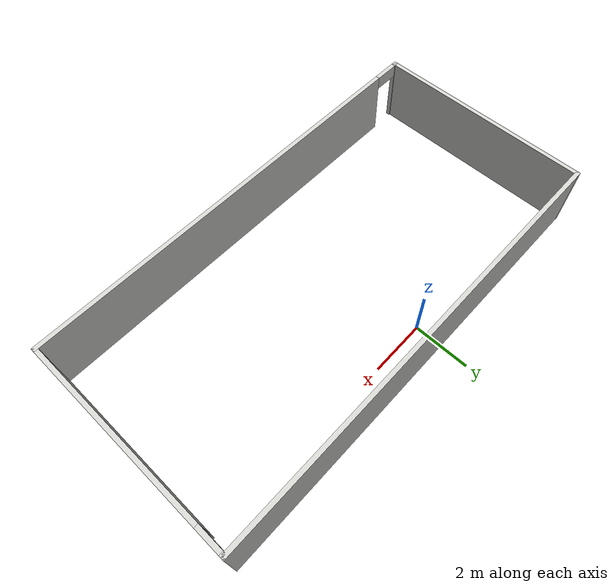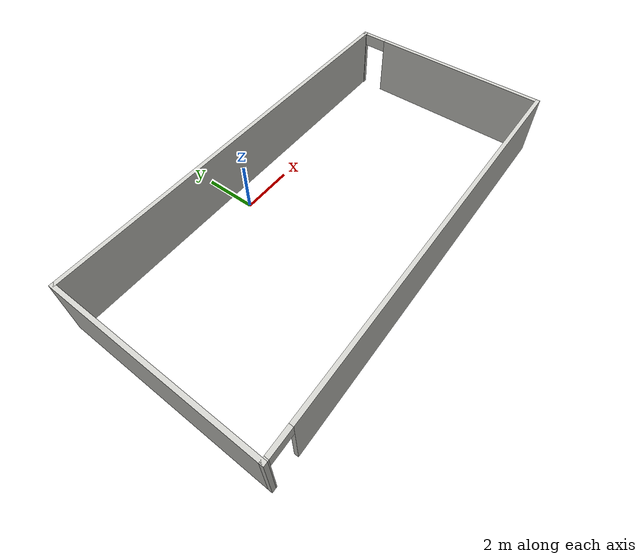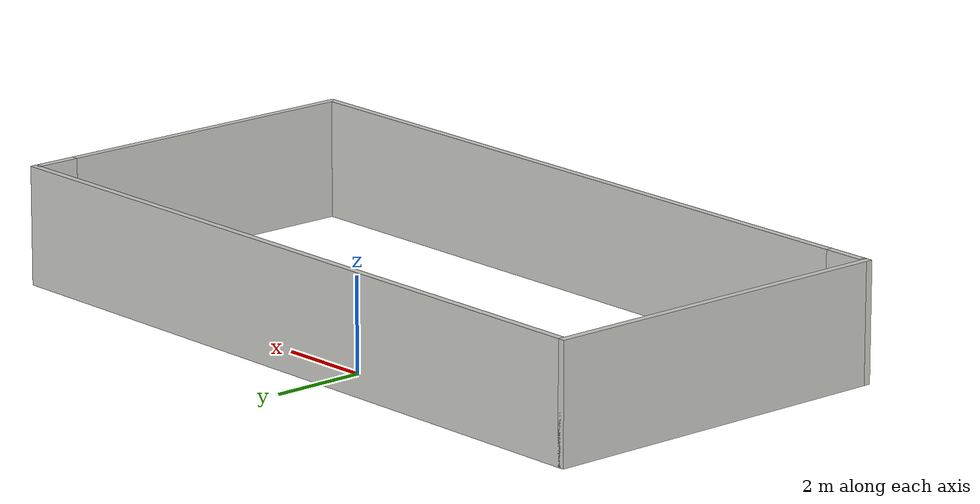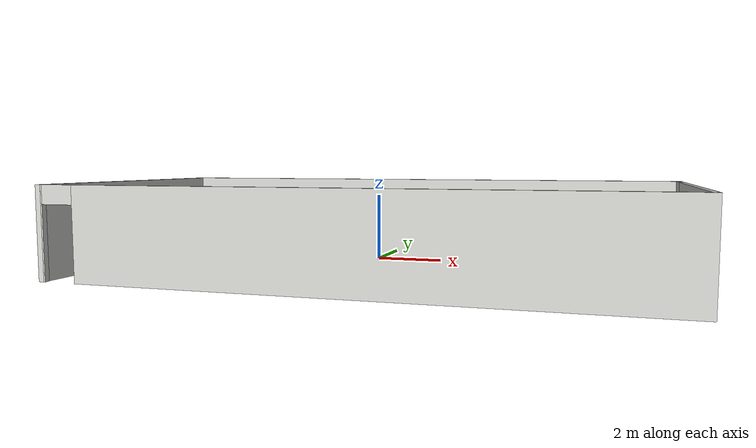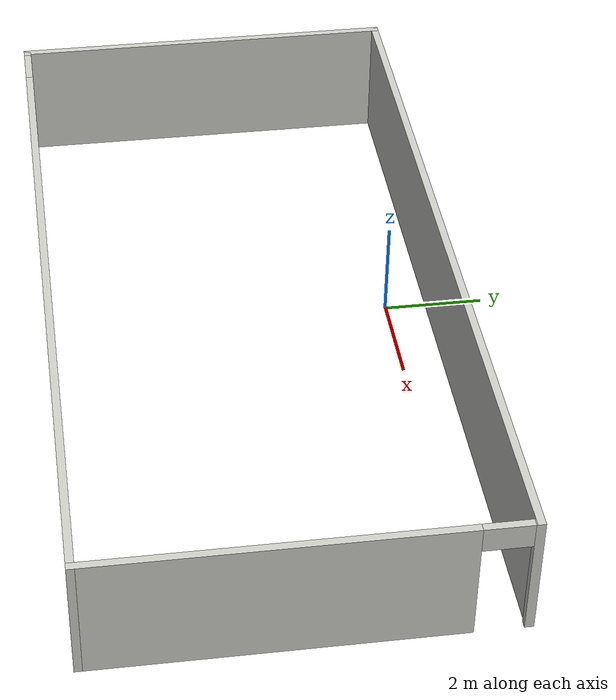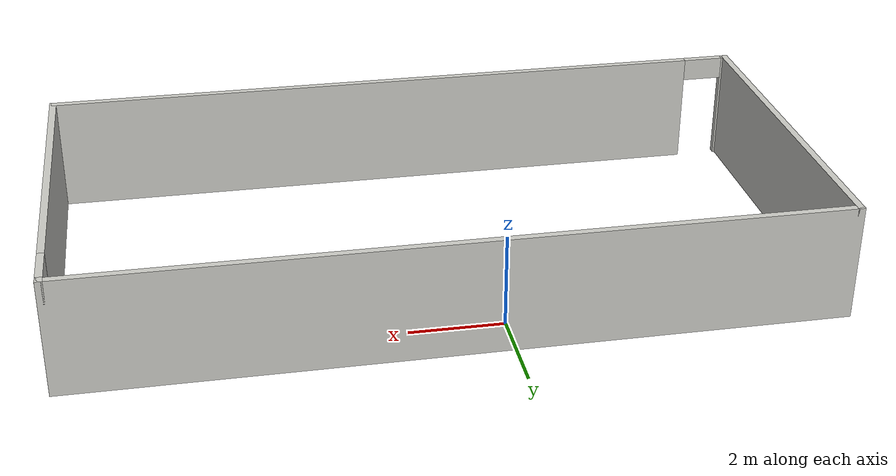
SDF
<?xml version='1.0'?>
<sdf version='1.7'>
  <model name='walls'>
    <pose>1.005 -3.025 0 0 -0 0</pose>
    <link name='Wall_0'>
      <collision name='Wall_0_Collision'>
        <geometry>
          <box>
            <size>8 0.15 2.5</size>
          </box>
        </geometry>
        <pose>0 0 1.25 0 -0 0</pose>
      </collision>
      <visual name='Wall_0_Visual'>
        <pose>0 0 1.25 0 -0 0</pose>
        <geometry>
          <box>
            <size>8 0.15 2.5</size>
          </box>
        </geometry>
        <material>
          <script>
            <uri>file://media/materials/scripts/gazebo.material</uri>
            <name>Gazebo/CeilingTiled</name>
          </script>
          <ambient>1 1 1 1</ambient>
        </material>
        <meta>
          <layer>0</layer>
        </meta>
      </visual>
      <pose>-7.925 0 0 0 -0 1.5708</pose>
    </link>
    <link name='Wall_1'>
      <collision name='Wall_1_Collision'>
        <geometry>
          <box>
            <size>16 0.15 2.5</size>
          </box>
        </geometry>
        <pose>0 0 1.25 0 -0 0</pose>
      </collision>
      <visual name='Wall_1_Visual'>
        <pose>0 0 1.25 0 -0 0</pose>
        <geometry>
          <box>
            <size>16 0.15 2.5</size>
          </box>
        </geometry>
        <material>
          <script>
            <uri>file://media/materials/scripts/gazebo.material</uri>
            <name>Gazebo/CeilingTiled</name>
          </script>
          <ambient>1 1 1 1</ambient>
        </material>
        <meta>
          <layer>0</layer>
        </meta>
      </visual>
      <pose>-0 3.925 0 0 -0 0</pose>
    </link>
    <link name='Wall_2'>
      <pose>7.925 0 0 0 -0 -1.5708</pose>
      <visual name='Wall_2_Visual_0'>
        <pose>-3.91421 0 1.25 0 -0 0</pose>
        <geometry>
          <box>
            <size>0.171577 0.15 2.5</size>
          </box>
        </geometry>
        <material>
          <script>
            <uri>file://media/materials/scripts/gazebo.material</uri>
            <name>Gazebo/CeilingTiled</name>
          </script>
          <ambient>1 1 1 1</ambient>
        </material>
        <meta>
          <layer>0</layer>
        </meta>
      </visual>
      <collision name='Wall_2_Collision_0'>
        <geometry>
          <box>
            <size>0.171577 0.15 2.5</size>
          </box>
        </geometry>
        <pose>-3.91421 0 1.25 0 -0 0</pose>
      </collision>
      <visual name='Wall_2_Visual_1'>
        <pose>0.535788 0 1.25 0 -0 0</pose>
        <geometry>
          <box>
            <size>6.92842 0.15 2.5</size>
          </box>
        </geometry>
        <material>
          <script>
            <uri>file://media/materials/scripts/gazebo.material</uri>
            <name>Gazebo/CeilingTiled</name>
          </script>
          <ambient>1 1 1 1</ambient>
        </material>
        <meta>
          <layer>0</layer>
        </meta>
      </visual>
      <collision name='Wall_2_Collision_1'>
        <geometry>
          <box>
            <size>6.92842 0.15 2.5</size>
          </box>
        </geometry>
        <pose>0.535788 0 1.25 0 -0 0</pose>
      </collision>
      <visual name='Wall_2_Visual_2'>
        <pose>-3.37842 0 2.25 0 -0 0</pose>
        <geometry>
          <box>
            <size>0.9 0.15 0.5</size>
          </box>
        </geometry>
        <material>
          <script>
            <uri>file://media/materials/scripts/gazebo.material</uri>
            <name>Gazebo/CeilingTiled</name>
          </script>
          <ambient>1 1 1 1</ambient>
        </material>
        <meta>
          <layer>0</layer>
        </meta>
      </visual>
      <collision name='Wall_2_Collision_2'>
        <geometry>
          <box>
            <size>0.9 0.15 0.5</size>
          </box>
        </geometry>
        <pose>-3.37842 0 2.25 0 -0 0</pose>
      </collision>
    </link>
    <link name='Wall_3'>
      <pose>-0 -3.925 0 0 -0 3.14159</pose>
      <visual name='Wall_3_Visual_0'>
        <pose>-0.546221 0 1.25 0 -0 0</pose>
        <geometry>
          <box>
            <size>14.9076 0.15 2.5</size>
          </box>
        </geometry>
        <material>
          <script>
            <uri>file://media/materials/scripts/gazebo.material</uri>
            <name>Gazebo/CeilingTiled</name>
          </script>
          <ambient>1 1 1 1</ambient>
        </material>
        <meta>
          <layer>0</layer>
        </meta>
      </visual>
      <collision name='Wall_3_Collision_0'>
        <geometry>
          <box>
            <size>14.9076 0.15 2.5</size>
          </box>
        </geometry>
        <pose>-0.546221 0 1.25 0 -0 0</pose>
      </collision>
      <visual name='Wall_3_Visual_1'>
        <pose>7.90378 0 1.25 0 -0 0</pose>
        <geometry>
          <box>
            <size>0.192442 0.15 2.5</size>
          </box>
        </geometry>
        <material>
          <script>
            <uri>file://media/materials/scripts/gazebo.material</uri>
            <name>Gazebo/CeilingTiled</name>
          </script>
          <ambient>1 1 1 1</ambient>
        </material>
        <meta>
          <layer>0</layer>
        </meta>
      </visual>
      <collision name='Wall_3_Collision_1'>
        <geometry>
          <box>
            <size>0.192442 0.15 2.5</size>
          </box>
        </geometry>
        <pose>7.90378 0 1.25 0 -0 0</pose>
      </collision>
      <visual name='Wall_3_Visual_2'>
        <pose>7.35756 0 2.25 0 -0 0</pose>
        <geometry>
          <box>
            <size>0.9 0.15 0.5</size>
          </box>
        </geometry>
        <material>
          <script>
            <uri>file://media/materials/scripts/gazebo.material</uri>
            <name>Gazebo/CeilingTiled</name>
          </script>
          <ambient>1 1 1 1</ambient>
        </material>
        <meta>
          <layer>0</layer>
        </meta>
      </visual>
      <collision name='Wall_3_Collision_2'>
        <geometry>
          <box>
            <size>0.9 0.15 0.5</size>
          </box>
        </geometry>
        <pose>7.35756 0 2.25 0 -0 0</pose>
      </collision>
    </link>
    <static>1</static>
  </model>
</sdf>
